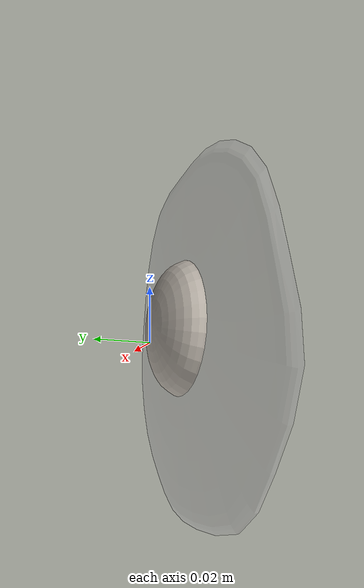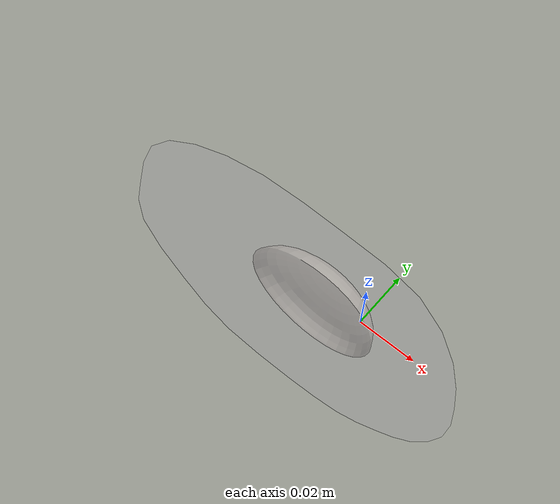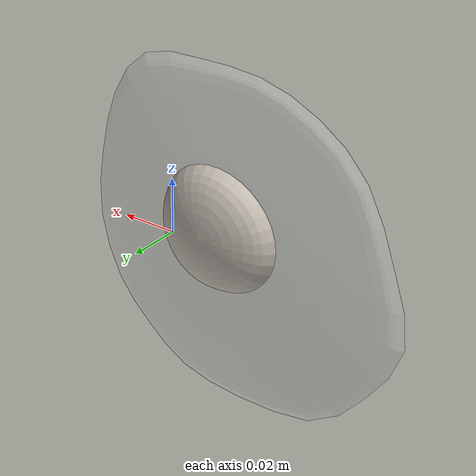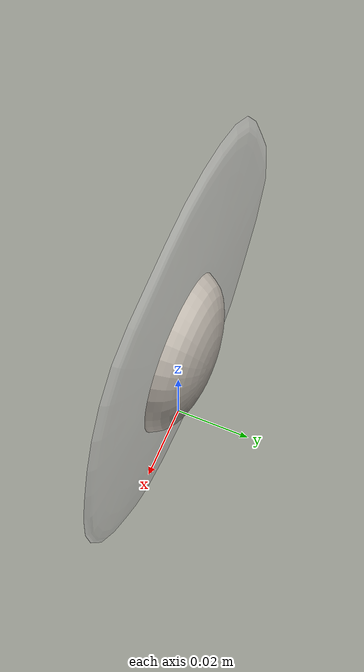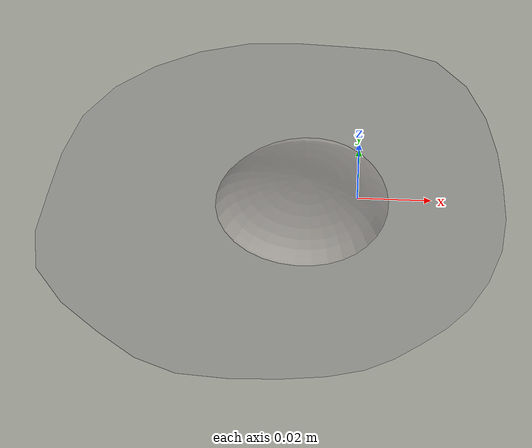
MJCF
<mujoco model="Egg_Cracked_27">
  <compiler autolimits="true" boundmass="0.01" angle="radian"/>
  <default>
    <default class="/">
      <default class="__VISUAL_MJT__">
        <geom contype="0" conaffinity="0" group="0"/>
      </default>
      <default class="__STRUCTURAL_MJT__">
        <geom contype="8" conaffinity="15" group="4" friction="0.90000000000000002 0.90000000000000002 0.001" solref="0.025000000000000001 1" solimp="0.998 0.998 0.001"/>
      </default>
      <default class="__DYNAMIC_MJT__">
        <geom contype="1" conaffinity="15" group="4" friction="0.90000000000000002 0.90000000000000002 0.001" solref="0.025000000000000001 1" solimp="0.998 0.998 0.001"/>
      </default>
    </default>
  </default>
  <asset>
    <texture name="Fried_Egg_White_Uncooked_Mat" type="2d" file="Fried_Egg_AlbedoTransparency.png"/>
    <material name="material_Fried_Egg_White_Uncooked_Mat" class="/" texture="Fried_Egg_White_Uncooked_Mat" specular="0.5" shininess="0.5" rgba="1 1 1 0.5"/>
    <texture name="Fried_Egg_Yolk_Mat" type="2d" file="Fried_Egg_AlbedoTransparency.png"/>
    <material name="material_Fried_Egg_Yolk_Mat" class="/" texture="Fried_Egg_Yolk_Mat" specular="0.5" shininess="0.5" rgba="1 1 1 1"/>
    <mesh name="Egg_Cracked_27_fried_egg_26_0" class="/" file="Egg_Cracked_27_fried_egg_26/Egg_Cracked_27_fried_egg_26_0.obj" scale="1 1 1"/>
    <mesh name="Egg_Cracked_27_fried_egg_26_1" class="/" file="Egg_Cracked_27_fried_egg_26/Egg_Cracked_27_fried_egg_26_1.obj" scale="1 1 1"/>
  </asset>
  <worldbody>
    <body name="Egg_Cracked_27">
      <joint name="Egg_Cracked_27_free" class="/" type="free" pos="0 0 0" axis="0 0 1" stiffness="0" range="0 0" armature="0" damping="0.10000000000000001" frictionloss="0"/>
      <body name="Egg_Cracked_27_fried_egg_26" pos="-0.011979999999999999 -0.01023 0.00346" quat="1 0 0 0">
        <geom name="Egg_Cracked_27_fried_egg_26_0" class="__VISUAL_MJT__" type="mesh" material="material_Fried_Egg_White_Uncooked_Mat" shellinertia="false" mesh="Egg_Cracked_27_fried_egg_26_0"/>
        <geom name="Egg_Cracked_27_fried_egg_26_1" class="__VISUAL_MJT__" type="mesh" material="material_Fried_Egg_Yolk_Mat" shellinertia="false" mesh="Egg_Cracked_27_fried_egg_26_1"/>
        <geom name="Egg_Cracked_27_PrimitiveCollider_0" class="__DYNAMIC_MJT__" type="box" size="0.063974000513553619 0.010231256484985352 0.062327742576599121" rgba="0 1 0 1" pos="-0.011983297765254974 0.010231256484985352 -0.0034557580947875977" quat="1 0 0 0"/>
      </body>
    </body>
  </worldbody>
</mujoco>
